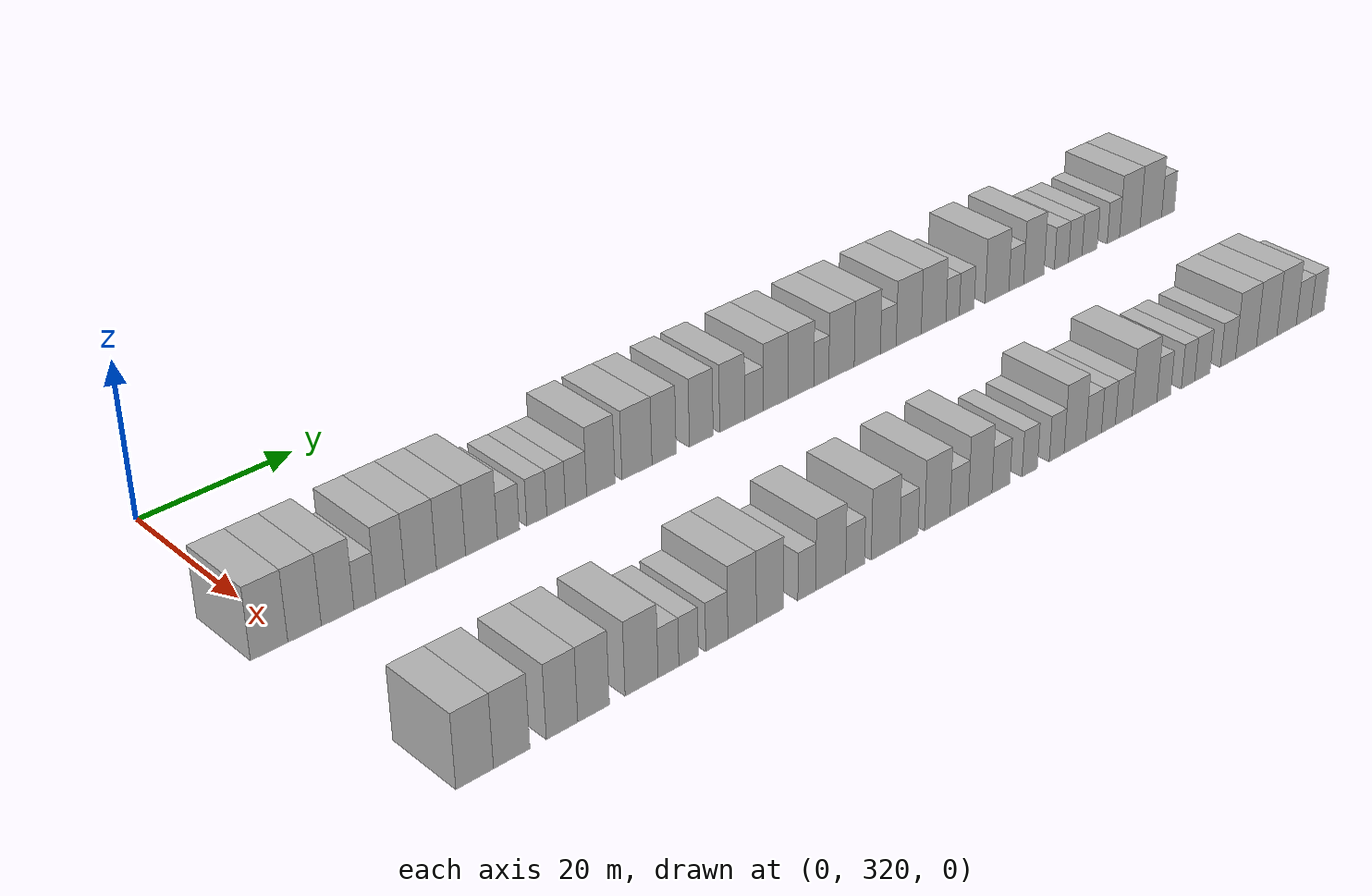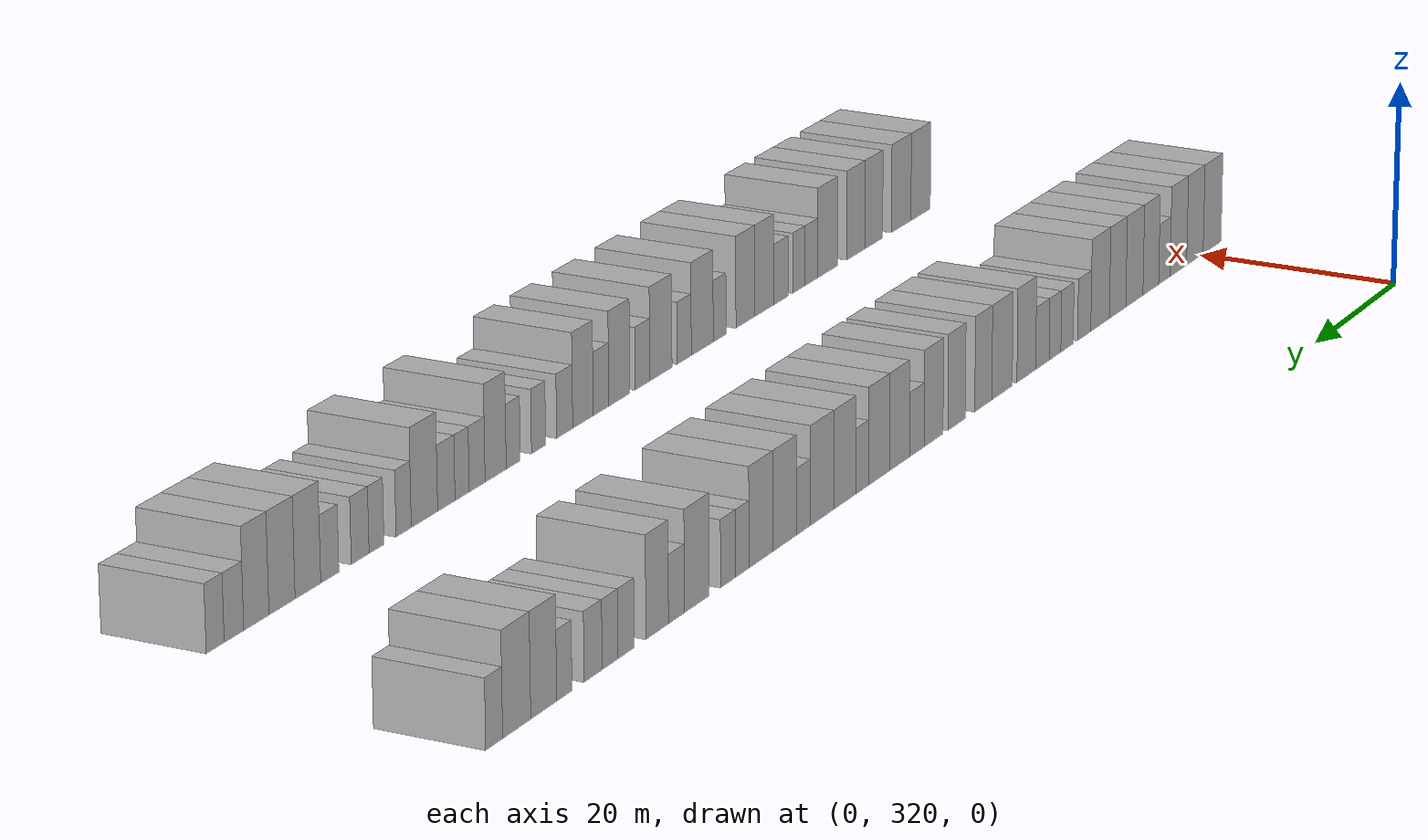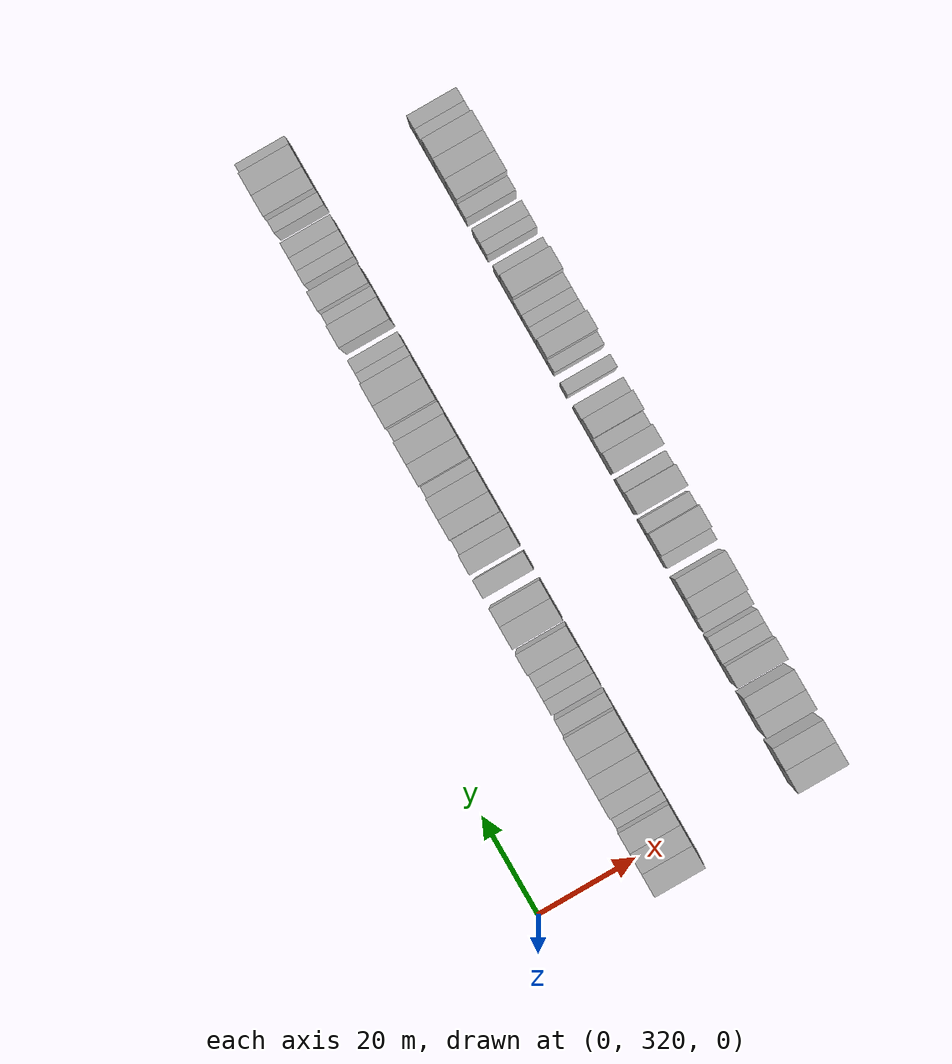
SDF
<sdf version="1.6">
 <world name="default">
  <model name="building_197">
   <static>1</static>
   <pose>25.0000 317.2518 0 0.000000 0.000000 0.000000</pose>
   <link name="link">
    <pose>0 0 4.50 0 0 0</pose>
    <collision name="collision"><geometry><box><size>10.0000 4.4565 9.0000</size></box></geometry></collision>
    <visual name="visual">
     <cast_shadows>0</cast_shadows>
     <geometry><box><size>10.0000 4.4565 9.0000</size></box></geometry>
     <material>
      <script>
       <uri>model://HANNAS_wall/materials/scripts</uri>
       <uri>model://HANNAS_wall/materials/textures</uri>
       <name>vrc/HANNAS_wall</name>
      </script>
     </material>
    </visual>
   </link>
  </model>
  <model name="building_198">
   <static>1</static>
   <pose>25.0000 321.5108 0 0.000000 0.000000 0.000000</pose>
   <link name="link">
    <pose>0 0 4.50 0 0 0</pose>
    <collision name="collision"><geometry><box><size>10.0000 4.0615 9.0000</size></box></geometry></collision>
    <visual name="visual">
     <cast_shadows>0</cast_shadows>
     <geometry><box><size>10.0000 4.0615 9.0000</size></box></geometry>
     <material>
      <script>
       <uri>model://HANNAS_wall/materials/scripts</uri>
       <uri>model://HANNAS_wall/materials/textures</uri>
       <name>vrc/HANNAS_wall</name>
      </script>
     </material>
    </visual>
   </link>
  </model>
  <model name="building_199">
   <static>1</static>
   <pose>25.0000 325.5617 0 0.000000 0.000000 0.000000</pose>
   <link name="link">
    <pose>0 0 4.50 0 0 0</pose>
    <collision name="collision"><geometry><box><size>10.0000 4.0402 9.0000</size></box></geometry></collision>
    <visual name="visual">
     <cast_shadows>0</cast_shadows>
     <geometry><box><size>10.0000 4.0402 9.0000</size></box></geometry>
     <material>
      <script>
       <uri>model://HANNAS_wall/materials/scripts</uri>
       <uri>model://HANNAS_wall/materials/textures</uri>
       <name>vrc/HANNAS_wall</name>
      </script>
     </material>
    </visual>
   </link>
  </model>
  <model name="building_200">
   <static>1</static>
   <pose>25.0000 328.9536 0 0.000000 0.000000 0.000000</pose>
   <link name="link">
    <pose>0 0 3.00 0 0 0</pose>
    <collision name="collision"><geometry><box><size>10.0000 2.7436 6.0000</size></box></geometry></collision>
    <visual name="visual">
     <cast_shadows>0</cast_shadows>
     <geometry><box><size>10.0000 2.7436 6.0000</size></box></geometry>
     <material>
      <script>
       <uri>model://HANNAS_wall/materials/scripts</uri>
       <uri>model://HANNAS_wall/materials/textures</uri>
       <name>vrc/HANNAS_wall</name>
      </script>
     </material>
    </visual>
   </link>
  </model>
  <model name="building_201">
   <static>1</static>
   <pose>25.0000 332.1944 0 0.000000 0.000000 0.000000</pose>
   <link name="link">
    <pose>0 0 4.50 0 0 0</pose>
    <collision name="collision"><geometry><box><size>10.0000 3.7379 9.0000</size></box></geometry></collision>
    <visual name="visual">
     <cast_shadows>0</cast_shadows>
     <geometry><box><size>10.0000 3.7379 9.0000</size></box></geometry>
     <material>
      <script>
       <uri>model://HANNAS_wall/materials/scripts</uri>
       <uri>model://HANNAS_wall/materials/textures</uri>
       <name>vrc/HANNAS_wall</name>
      </script>
     </material>
    </visual>
   </link>
  </model>
  <model name="building_202">
   <static>1</static>
   <pose>25.0000 336.0819 0 0.000000 0.000000 0.000000</pose>
   <link name="link">
    <pose>0 0 4.50 0 0 0</pose>
    <collision name="collision"><geometry><box><size>10.0000 4.0372 9.0000</size></box></geometry></collision>
    <visual name="visual">
     <cast_shadows>0</cast_shadows>
     <geometry><box><size>10.0000 4.0372 9.0000</size></box></geometry>
     <material>
      <script>
       <uri>model://HANNAS_wall/materials/scripts</uri>
       <uri>model://HANNAS_wall/materials/textures</uri>
       <name>vrc/HANNAS_wall</name>
      </script>
     </material>
    </visual>
   </link>
  </model>
  <model name="building_203">
   <static>1</static>
   <pose>25.0000 340.0182 0 0.000000 0.000000 0.000000</pose>
   <link name="link">
    <pose>0 0 4.50 0 0 0</pose>
    <collision name="collision"><geometry><box><size>10.0000 3.8353 9.0000</size></box></geometry></collision>
    <visual name="visual">
     <cast_shadows>0</cast_shadows>
     <geometry><box><size>10.0000 3.8353 9.0000</size></box></geometry>
     <material>
      <script>
       <uri>model://HANNAS_wall/materials/scripts</uri>
       <uri>model://HANNAS_wall/materials/textures</uri>
       <name>vrc/HANNAS_wall</name>
      </script>
     </material>
    </visual>
   </link>
  </model>
  <model name="building_204">
   <static>1</static>
   <pose>25.0000 344.0698 0 0.000000 0.000000 0.000000</pose>
   <link name="link">
    <pose>0 0 4.50 0 0 0</pose>
    <collision name="collision"><geometry><box><size>10.0000 4.2679 9.0000</size></box></geometry></collision>
    <visual name="visual">
     <cast_shadows>0</cast_shadows>
     <geometry><box><size>10.0000 4.2679 9.0000</size></box></geometry>
     <material>
      <script>
       <uri>model://HANNAS_wall/materials/scripts</uri>
       <uri>model://HANNAS_wall/materials/textures</uri>
       <name>vrc/HANNAS_wall</name>
      </script>
     </material>
    </visual>
   </link>
  </model>
  <model name="building_205">
   <static>1</static>
   <pose>25.0000 347.7019 0 0.000000 0.000000 0.000000</pose>
   <link name="link">
    <pose>0 0 3.00 0 0 0</pose>
    <collision name="collision"><geometry><box><size>10.0000 2.9964 6.0000</size></box></geometry></collision>
    <visual name="visual">
     <cast_shadows>0</cast_shadows>
     <geometry><box><size>10.0000 2.9964 6.0000</size></box></geometry>
     <material>
      <script>
       <uri>model://HANNAS_wall/materials/scripts</uri>
       <uri>model://HANNAS_wall/materials/textures</uri>
       <name>vrc/HANNAS_wall</name>
      </script>
     </material>
    </visual>
   </link>
  </model>
  <model name="building_206">
   <static>1</static>
   <pose>25.0000 351.5862 0 0.000000 0.000000 0.000000</pose>
   <link name="link">
    <pose>0 0 3.00 0 0 0</pose>
    <collision name="collision"><geometry><box><size>10.0000 2.7721 6.0000</size></box></geometry></collision>
    <visual name="visual">
     <cast_shadows>0</cast_shadows>
     <geometry><box><size>10.0000 2.7721 6.0000</size></box></geometry>
     <material>
      <script>
       <uri>model://HANNAS_wall/materials/scripts</uri>
       <uri>model://HANNAS_wall/materials/textures</uri>
       <name>vrc/HANNAS_wall</name>
      </script>
     </material>
    </visual>
   </link>
  </model>
  <model name="building_207">
   <static>1</static>
   <pose>25.0000 354.2764 0 0.000000 0.000000 0.000000</pose>
   <link name="link">
    <pose>0 0 3.00 0 0 0</pose>
    <collision name="collision"><geometry><box><size>10.0000 2.6082 6.0000</size></box></geometry></collision>
    <visual name="visual">
     <cast_shadows>0</cast_shadows>
     <geometry><box><size>10.0000 2.6082 6.0000</size></box></geometry>
     <material>
      <script>
       <uri>model://HANNAS_wall/materials/scripts</uri>
       <uri>model://HANNAS_wall/materials/textures</uri>
       <name>vrc/HANNAS_wall</name>
      </script>
     </material>
    </visual>
   </link>
  </model>
  <model name="building_208">
   <static>1</static>
   <pose>25.0000 357.0759 0 0.000000 0.000000 0.000000</pose>
   <link name="link">
    <pose>0 0 3.00 0 0 0</pose>
    <collision name="collision"><geometry><box><size>10.0000 2.9909 6.0000</size></box></geometry></collision>
    <visual name="visual">
     <cast_shadows>0</cast_shadows>
     <geometry><box><size>10.0000 2.9909 6.0000</size></box></geometry>
     <material>
      <script>
       <uri>model://HANNAS_wall/materials/scripts</uri>
       <uri>model://HANNAS_wall/materials/textures</uri>
       <name>vrc/HANNAS_wall</name>
      </script>
     </material>
    </visual>
   </link>
  </model>
  <model name="building_209">
   <static>1</static>
   <pose>25.0000 360.6147 0 0.000000 0.000000 0.000000</pose>
   <link name="link">
    <pose>0 0 4.50 0 0 0</pose>
    <collision name="collision"><geometry><box><size>10.0000 4.0865 9.0000</size></box></geometry></collision>
    <visual name="visual">
     <cast_shadows>0</cast_shadows>
     <geometry><box><size>10.0000 4.0865 9.0000</size></box></geometry>
     <material>
      <script>
       <uri>model://HANNAS_wall/materials/scripts</uri>
       <uri>model://HANNAS_wall/materials/textures</uri>
       <name>vrc/HANNAS_wall</name>
      </script>
     </material>
    </visual>
   </link>
  </model>
  <model name="building_210">
   <static>1</static>
   <pose>25.0000 365.8643 0 0.000000 0.000000 0.000000</pose>
   <link name="link">
    <pose>0 0 4.50 0 0 0</pose>
    <collision name="collision"><geometry><box><size>10.0000 4.4127 9.0000</size></box></geometry></collision>
    <visual name="visual">
     <cast_shadows>0</cast_shadows>
     <geometry><box><size>10.0000 4.4127 9.0000</size></box></geometry>
     <material>
      <script>
       <uri>model://HANNAS_wall/materials/scripts</uri>
       <uri>model://HANNAS_wall/materials/textures</uri>
       <name>vrc/HANNAS_wall</name>
      </script>
     </material>
    </visual>
   </link>
  </model>
  <model name="building_211">
   <static>1</static>
   <pose>25.0000 369.8745 0 0.000000 0.000000 0.000000</pose>
   <link name="link">
    <pose>0 0 4.50 0 0 0</pose>
    <collision name="collision"><geometry><box><size>10.0000 3.6077 9.0000</size></box></geometry></collision>
    <visual name="visual">
     <cast_shadows>0</cast_shadows>
     <geometry><box><size>10.0000 3.6077 9.0000</size></box></geometry>
     <material>
      <script>
       <uri>model://HANNAS_wall/materials/scripts</uri>
       <uri>model://HANNAS_wall/materials/textures</uri>
       <name>vrc/HANNAS_wall</name>
      </script>
     </material>
    </visual>
   </link>
  </model>
  <model name="building_212">
   <static>1</static>
   <pose>25.0000 375.4899 0 0.000000 0.000000 0.000000</pose>
   <link name="link">
    <pose>0 0 4.50 0 0 0</pose>
    <collision name="collision"><geometry><box><size>10.0000 3.6230 9.0000</size></box></geometry></collision>
    <visual name="visual">
     <cast_shadows>0</cast_shadows>
     <geometry><box><size>10.0000 3.6230 9.0000</size></box></geometry>
     <material>
      <script>
       <uri>model://HANNAS_wall/materials/scripts</uri>
       <uri>model://HANNAS_wall/materials/textures</uri>
       <name>vrc/HANNAS_wall</name>
      </script>
     </material>
    </visual>
   </link>
  </model>
  <model name="building_213">
   <static>1</static>
   <pose>25.0000 380.2463 0 0.000000 0.000000 0.000000</pose>
   <link name="link">
    <pose>0 0 4.50 0 0 0</pose>
    <collision name="collision"><geometry><box><size>10.0000 3.8899 9.0000</size></box></geometry></collision>
    <visual name="visual">
     <cast_shadows>0</cast_shadows>
     <geometry><box><size>10.0000 3.8899 9.0000</size></box></geometry>
     <material>
      <script>
       <uri>model://HANNAS_wall/materials/scripts</uri>
       <uri>model://HANNAS_wall/materials/textures</uri>
       <name>vrc/HANNAS_wall</name>
      </script>
     </material>
    </visual>
   </link>
  </model>
  <model name="building_214">
   <static>1</static>
   <pose>25.0000 383.6715 0 0.000000 0.000000 0.000000</pose>
   <link name="link">
    <pose>0 0 3.00 0 0 0</pose>
    <collision name="collision"><geometry><box><size>10.0000 2.9606 6.0000</size></box></geometry></collision>
    <visual name="visual">
     <cast_shadows>0</cast_shadows>
     <geometry><box><size>10.0000 2.9606 6.0000</size></box></geometry>
     <material>
      <script>
       <uri>model://HANNAS_wall/materials/scripts</uri>
       <uri>model://HANNAS_wall/materials/textures</uri>
       <name>vrc/HANNAS_wall</name>
      </script>
     </material>
    </visual>
   </link>
  </model>
  <model name="building_215">
   <static>1</static>
   <pose>25.0000 387.1314 0 0.000000 0.000000 0.000000</pose>
   <link name="link">
    <pose>0 0 4.50 0 0 0</pose>
    <collision name="collision"><geometry><box><size>10.0000 3.9591 9.0000</size></box></geometry></collision>
    <visual name="visual">
     <cast_shadows>0</cast_shadows>
     <geometry><box><size>10.0000 3.9591 9.0000</size></box></geometry>
     <material>
      <script>
       <uri>model://HANNAS_wall/materials/scripts</uri>
       <uri>model://HANNAS_wall/materials/textures</uri>
       <name>vrc/HANNAS_wall</name>
      </script>
     </material>
    </visual>
   </link>
  </model>
  <model name="building_216">
   <static>1</static>
   <pose>25.0000 391.2156 0 0.000000 0.000000 0.000000</pose>
   <link name="link">
    <pose>0 0 4.50 0 0 0</pose>
    <collision name="collision"><geometry><box><size>10.0000 4.2094 9.0000</size></box></geometry></collision>
    <visual name="visual">
     <cast_shadows>0</cast_shadows>
     <geometry><box><size>10.0000 4.2094 9.0000</size></box></geometry>
     <material>
      <script>
       <uri>model://HANNAS_wall/materials/scripts</uri>
       <uri>model://HANNAS_wall/materials/textures</uri>
       <name>vrc/HANNAS_wall</name>
      </script>
     </material>
    </visual>
   </link>
  </model>
  <model name="building_217">
   <static>1</static>
   <pose>25.0000 394.5482 0 0.000000 0.000000 0.000000</pose>
   <link name="link">
    <pose>0 0 3.00 0 0 0</pose>
    <collision name="collision"><geometry><box><size>10.0000 2.4557 6.0000</size></box></geometry></collision>
    <visual name="visual">
     <cast_shadows>0</cast_shadows>
     <geometry><box><size>10.0000 2.4557 6.0000</size></box></geometry>
     <material>
      <script>
       <uri>model://HANNAS_wall/materials/scripts</uri>
       <uri>model://HANNAS_wall/materials/textures</uri>
       <name>vrc/HANNAS_wall</name>
      </script>
     </material>
    </visual>
   </link>
  </model>
  <model name="building_218">
   <static>1</static>
   <pose>25.0000 397.8906 0 0.000000 0.000000 0.000000</pose>
   <link name="link">
    <pose>0 0 4.50 0 0 0</pose>
    <collision name="collision"><geometry><box><size>10.0000 4.2292 9.0000</size></box></geometry></collision>
    <visual name="visual">
     <cast_shadows>0</cast_shadows>
     <geometry><box><size>10.0000 4.2292 9.0000</size></box></geometry>
     <material>
      <script>
       <uri>model://HANNAS_wall/materials/scripts</uri>
       <uri>model://HANNAS_wall/materials/textures</uri>
       <name>vrc/HANNAS_wall</name>
      </script>
     </material>
    </visual>
   </link>
  </model>
  <model name="building_219">
   <static>1</static>
   <pose>25.0000 402.2283 0 0.000000 0.000000 0.000000</pose>
   <link name="link">
    <pose>0 0 4.50 0 0 0</pose>
    <collision name="collision"><geometry><box><size>10.0000 4.4461 9.0000</size></box></geometry></collision>
    <visual name="visual">
     <cast_shadows>0</cast_shadows>
     <geometry><box><size>10.0000 4.4461 9.0000</size></box></geometry>
     <material>
      <script>
       <uri>model://HANNAS_wall/materials/scripts</uri>
       <uri>model://HANNAS_wall/materials/textures</uri>
       <name>vrc/HANNAS_wall</name>
      </script>
     </material>
    </visual>
   </link>
  </model>
  <model name="building_220">
   <static>1</static>
   <pose>25.0000 405.8109 0 0.000000 0.000000 0.000000</pose>
   <link name="link">
    <pose>0 0 3.00 0 0 0</pose>
    <collision name="collision"><geometry><box><size>10.0000 2.7191 6.0000</size></box></geometry></collision>
    <visual name="visual">
     <cast_shadows>0</cast_shadows>
     <geometry><box><size>10.0000 2.7191 6.0000</size></box></geometry>
     <material>
      <script>
       <uri>model://HANNAS_wall/materials/scripts</uri>
       <uri>model://HANNAS_wall/materials/textures</uri>
       <name>vrc/HANNAS_wall</name>
      </script>
     </material>
    </visual>
   </link>
  </model>
  <model name="building_221">
   <static>1</static>
   <pose>25.0000 409.3556 0 0.000000 0.000000 0.000000</pose>
   <link name="link">
    <pose>0 0 4.50 0 0 0</pose>
    <collision name="collision"><geometry><box><size>10.0000 4.3703 9.0000</size></box></geometry></collision>
    <visual name="visual">
     <cast_shadows>0</cast_shadows>
     <geometry><box><size>10.0000 4.3703 9.0000</size></box></geometry>
     <material>
      <script>
       <uri>model://HANNAS_wall/materials/scripts</uri>
       <uri>model://HANNAS_wall/materials/textures</uri>
       <name>vrc/HANNAS_wall</name>
      </script>
     </material>
    </visual>
   </link>
  </model>
  <model name="building_222">
   <static>1</static>
   <pose>25.0000 413.7245 0 0.000000 0.000000 0.000000</pose>
   <link name="link">
    <pose>0 0 4.50 0 0 0</pose>
    <collision name="collision"><geometry><box><size>10.0000 4.3675 9.0000</size></box></geometry></collision>
    <visual name="visual">
     <cast_shadows>0</cast_shadows>
     <geometry><box><size>10.0000 4.3675 9.0000</size></box></geometry>
     <material>
      <script>
       <uri>model://HANNAS_wall/materials/scripts</uri>
       <uri>model://HANNAS_wall/materials/textures</uri>
       <name>vrc/HANNAS_wall</name>
      </script>
     </material>
    </visual>
   </link>
  </model>
  <model name="building_223">
   <static>1</static>
   <pose>25.0000 417.1177 0 0.000000 0.000000 0.000000</pose>
   <link name="link">
    <pose>0 0 3.00 0 0 0</pose>
    <collision name="collision"><geometry><box><size>10.0000 2.4190 6.0000</size></box></geometry></collision>
    <visual name="visual">
     <cast_shadows>0</cast_shadows>
     <geometry><box><size>10.0000 2.4190 6.0000</size></box></geometry>
     <material>
      <script>
       <uri>model://HANNAS_wall/materials/scripts</uri>
       <uri>model://HANNAS_wall/materials/textures</uri>
       <name>vrc/HANNAS_wall</name>
      </script>
     </material>
    </visual>
   </link>
  </model>
  <model name="building_224">
   <static>1</static>
   <pose>25.0000 419.6715 0 0.000000 0.000000 0.000000</pose>
   <link name="link">
    <pose>0 0 3.00 0 0 0</pose>
    <collision name="collision"><geometry><box><size>10.0000 2.6886 6.0000</size></box></geometry></collision>
    <visual name="visual">
     <cast_shadows>0</cast_shadows>
     <geometry><box><size>10.0000 2.6886 6.0000</size></box></geometry>
     <material>
      <script>
       <uri>model://HANNAS_wall/materials/scripts</uri>
       <uri>model://HANNAS_wall/materials/textures</uri>
       <name>vrc/HANNAS_wall</name>
      </script>
     </material>
    </visual>
   </link>
  </model>
  <model name="building_225">
   <static>1</static>
   <pose>25.0000 425.2130 0 0.000000 0.000000 0.000000</pose>
   <link name="link">
    <pose>0 0 4.50 0 0 0</pose>
    <collision name="collision"><geometry><box><size>10.0000 4.3943 9.0000</size></box></geometry></collision>
    <visual name="visual">
     <cast_shadows>0</cast_shadows>
     <geometry><box><size>10.0000 4.3943 9.0000</size></box></geometry>
     <material>
      <script>
       <uri>model://HANNAS_wall/materials/scripts</uri>
       <uri>model://HANNAS_wall/materials/textures</uri>
       <name>vrc/HANNAS_wall</name>
      </script>
     </material>
    </visual>
   </link>
  </model>
  <model name="building_226">
   <static>1</static>
   <pose>25.0000 428.7999 0 0.000000 0.000000 0.000000</pose>
   <link name="link">
    <pose>0 0 3.00 0 0 0</pose>
    <collision name="collision"><geometry><box><size>10.0000 2.7796 6.0000</size></box></geometry></collision>
    <visual name="visual">
     <cast_shadows>0</cast_shadows>
     <geometry><box><size>10.0000 2.7796 6.0000</size></box></geometry>
     <material>
      <script>
       <uri>model://HANNAS_wall/materials/scripts</uri>
       <uri>model://HANNAS_wall/materials/textures</uri>
       <name>vrc/HANNAS_wall</name>
      </script>
     </material>
    </visual>
   </link>
  </model>
  <model name="building_227">
   <static>1</static>
   <pose>25.0000 432.1204 0 0.000000 0.000000 0.000000</pose>
   <link name="link">
    <pose>0 0 4.50 0 0 0</pose>
    <collision name="collision"><geometry><box><size>10.0000 3.8614 9.0000</size></box></geometry></collision>
    <visual name="visual">
     <cast_shadows>0</cast_shadows>
     <geometry><box><size>10.0000 3.8614 9.0000</size></box></geometry>
     <material>
      <script>
       <uri>model://HANNAS_wall/materials/scripts</uri>
       <uri>model://HANNAS_wall/materials/textures</uri>
       <name>vrc/HANNAS_wall</name>
      </script>
     </material>
    </visual>
   </link>
  </model>
  <model name="building_228">
   <static>1</static>
   <pose>25.0000 437.4178 0 0.000000 0.000000 0.000000</pose>
   <link name="link">
    <pose>0 0 3.00 0 0 0</pose>
    <collision name="collision"><geometry><box><size>10.0000 2.7332 6.0000</size></box></geometry></collision>
    <visual name="visual">
     <cast_shadows>0</cast_shadows>
     <geometry><box><size>10.0000 2.7332 6.0000</size></box></geometry>
     <material>
      <script>
       <uri>model://HANNAS_wall/materials/scripts</uri>
       <uri>model://HANNAS_wall/materials/textures</uri>
       <name>vrc/HANNAS_wall</name>
      </script>
     </material>
    </visual>
   </link>
  </model>
  <model name="building_229">
   <static>1</static>
   <pose>25.0000 440.1076 0 0.000000 0.000000 0.000000</pose>
   <link name="link">
    <pose>0 0 3.00 0 0 0</pose>
    <collision name="collision"><geometry><box><size>10.0000 2.6464 6.0000</size></box></geometry></collision>
    <visual name="visual">
     <cast_shadows>0</cast_shadows>
     <geometry><box><size>10.0000 2.6464 6.0000</size></box></geometry>
     <material>
      <script>
       <uri>model://HANNAS_wall/materials/scripts</uri>
       <uri>model://HANNAS_wall/materials/textures</uri>
       <name>vrc/HANNAS_wall</name>
      </script>
     </material>
    </visual>
   </link>
  </model>
  <model name="building_230">
   <static>1</static>
   <pose>25.0000 442.9278 0 0.000000 0.000000 0.000000</pose>
   <link name="link">
    <pose>0 0 3.00 0 0 0</pose>
    <collision name="collision"><geometry><box><size>10.0000 2.9940 6.0000</size></box></geometry></collision>
    <visual name="visual">
     <cast_shadows>0</cast_shadows>
     <geometry><box><size>10.0000 2.9940 6.0000</size></box></geometry>
     <material>
      <script>
       <uri>model://HANNAS_wall/materials/scripts</uri>
       <uri>model://HANNAS_wall/materials/textures</uri>
       <name>vrc/HANNAS_wall</name>
      </script>
     </material>
    </visual>
   </link>
  </model>
  <model name="building_231">
   <static>1</static>
   <pose>25.0000 447.6587 0 0.000000 0.000000 0.000000</pose>
   <link name="link">
    <pose>0 0 3.00 0 0 0</pose>
    <collision name="collision"><geometry><box><size>10.0000 2.4679 6.0000</size></box></geometry></collision>
    <visual name="visual">
     <cast_shadows>0</cast_shadows>
     <geometry><box><size>10.0000 2.4679 6.0000</size></box></geometry>
     <material>
      <script>
       <uri>model://HANNAS_wall/materials/scripts</uri>
       <uri>model://HANNAS_wall/materials/textures</uri>
       <name>vrc/HANNAS_wall</name>
      </script>
     </material>
    </visual>
   </link>
  </model>
  <model name="building_232">
   <static>1</static>
   <pose>25.0000 450.9825 0 0.000000 0.000000 0.000000</pose>
   <link name="link">
    <pose>0 0 4.50 0 0 0</pose>
    <collision name="collision"><geometry><box><size>10.0000 4.1797 9.0000</size></box></geometry></collision>
    <visual name="visual">
     <cast_shadows>0</cast_shadows>
     <geometry><box><size>10.0000 4.1797 9.0000</size></box></geometry>
     <material>
      <script>
       <uri>model://HANNAS_wall/materials/scripts</uri>
       <uri>model://HANNAS_wall/materials/textures</uri>
       <name>vrc/HANNAS_wall</name>
      </script>
     </material>
    </visual>
   </link>
  </model>
  <model name="building_233">
   <static>1</static>
   <pose>25.0000 455.2937 0 0.000000 0.000000 0.000000</pose>
   <link name="link">
    <pose>0 0 4.50 0 0 0</pose>
    <collision name="collision"><geometry><box><size>10.0000 4.4428 9.0000</size></box></geometry></collision>
    <visual name="visual">
     <cast_shadows>0</cast_shadows>
     <geometry><box><size>10.0000 4.4428 9.0000</size></box></geometry>
     <material>
      <script>
       <uri>model://HANNAS_wall/materials/scripts</uri>
       <uri>model://HANNAS_wall/materials/textures</uri>
       <name>vrc/HANNAS_wall</name>
      </script>
     </material>
    </visual>
   </link>
  </model>
  <model name="building_234">
   <static>1</static>
   <pose>25.0000 458.8387 0 0.000000 0.000000 0.000000</pose>
   <link name="link">
    <pose>0 0 3.00 0 0 0</pose>
    <collision name="collision"><geometry><box><size>10.0000 2.6471 6.0000</size></box></geometry></collision>
    <visual name="visual">
     <cast_shadows>0</cast_shadows>
     <geometry><box><size>10.0000 2.6471 6.0000</size></box></geometry>
     <material>
      <script>
       <uri>model://HANNAS_wall/materials/scripts</uri>
       <uri>model://HANNAS_wall/materials/textures</uri>
       <name>vrc/HANNAS_wall</name>
      </script>
     </material>
    </visual>
   </link>
  </model>
  <model name="building_430">
   <static>1</static>
   <pose>55.0000 320.3013 0 0.000000 0.000000 0.000000</pose>
   <link name="link">
    <pose>0 0 4.50 0 0 0</pose>
    <collision name="collision"><geometry><box><size>10.0000 4.4368 9.0000</size></box></geometry></collision>
    <visual name="visual">
     <cast_shadows>0</cast_shadows>
     <geometry><box><size>10.0000 4.4368 9.0000</size></box></geometry>
     <material>
      <script>
       <uri>model://HANNAS_wall/materials/scripts</uri>
       <uri>model://HANNAS_wall/materials/textures</uri>
       <name>vrc/HANNAS_wall</name>
      </script>
     </material>
    </visual>
   </link>
  </model>
  <model name="building_431">
   <static>1</static>
   <pose>55.0000 324.7061 0 0.000000 0.000000 0.000000</pose>
   <link name="link">
    <pose>0 0 4.50 0 0 0</pose>
    <collision name="collision"><geometry><box><size>10.0000 4.3727 9.0000</size></box></geometry></collision>
    <visual name="visual">
     <cast_shadows>0</cast_shadows>
     <geometry><box><size>10.0000 4.3727 9.0000</size></box></geometry>
     <material>
      <script>
       <uri>model://HANNAS_wall/materials/scripts</uri>
       <uri>model://HANNAS_wall/materials/textures</uri>
       <name>vrc/HANNAS_wall</name>
      </script>
     </material>
    </visual>
   </link>
  </model>
  <model name="building_432">
   <static>1</static>
   <pose>55.0000 330.8379 0 0.000000 0.000000 0.000000</pose>
   <link name="link">
    <pose>0 0 4.50 0 0 0</pose>
    <collision name="collision"><geometry><box><size>10.0000 3.8909 9.0000</size></box></geometry></collision>
    <visual name="visual">
     <cast_shadows>0</cast_shadows>
     <geometry><box><size>10.0000 3.8909 9.0000</size></box></geometry>
     <material>
      <script>
       <uri>model://HANNAS_wall/materials/scripts</uri>
       <uri>model://HANNAS_wall/materials/textures</uri>
       <name>vrc/HANNAS_wall</name>
      </script>
     </material>
    </visual>
   </link>
  </model>
  <model name="building_433">
   <static>1</static>
   <pose>55.0000 334.7774 0 0.000000 0.000000 0.000000</pose>
   <link name="link">
    <pose>0 0 4.50 0 0 0</pose>
    <collision name="collision"><geometry><box><size>10.0000 3.9883 9.0000</size></box></geometry></collision>
    <visual name="visual">
     <cast_shadows>0</cast_shadows>
     <geometry><box><size>10.0000 3.9883 9.0000</size></box></geometry>
     <material>
      <script>
       <uri>model://HANNAS_wall/materials/scripts</uri>
       <uri>model://HANNAS_wall/materials/textures</uri>
       <name>vrc/HANNAS_wall</name>
      </script>
     </material>
    </visual>
   </link>
  </model>
  <model name="building_434">
   <static>1</static>
   <pose>55.0000 340.9197 0 0.000000 0.000000 0.000000</pose>
   <link name="link">
    <pose>0 0 4.50 0 0 0</pose>
    <collision name="collision"><geometry><box><size>10.0000 4.2963 9.0000</size></box></geometry></collision>
    <visual name="visual">
     <cast_shadows>0</cast_shadows>
     <geometry><box><size>10.0000 4.2963 9.0000</size></box></geometry>
     <material>
      <script>
       <uri>model://HANNAS_wall/materials/scripts</uri>
       <uri>model://HANNAS_wall/materials/textures</uri>
       <name>vrc/HANNAS_wall</name>
      </script>
     </material>
    </visual>
   </link>
  </model>
  <model name="building_435">
   <static>1</static>
   <pose>55.0000 344.4297 0 0.000000 0.000000 0.000000</pose>
   <link name="link">
    <pose>0 0 3.00 0 0 0</pose>
    <collision name="collision"><geometry><box><size>10.0000 2.7237 6.0000</size></box></geometry></collision>
    <visual name="visual">
     <cast_shadows>0</cast_shadows>
     <geometry><box><size>10.0000 2.7237 6.0000</size></box></geometry>
     <material>
      <script>
       <uri>model://HANNAS_wall/materials/scripts</uri>
       <uri>model://HANNAS_wall/materials/textures</uri>
       <name>vrc/HANNAS_wall</name>
      </script>
     </material>
    </visual>
   </link>
  </model>
  <model name="building_436">
   <static>1</static>
   <pose>55.0000 347.0900 0 0.000000 0.000000 0.000000</pose>
   <link name="link">
    <pose>0 0 3.00 0 0 0</pose>
    <collision name="collision"><geometry><box><size>10.0000 2.5969 6.0000</size></box></geometry></collision>
    <visual name="visual">
     <cast_shadows>0</cast_shadows>
     <geometry><box><size>10.0000 2.5969 6.0000</size></box></geometry>
     <material>
      <script>
       <uri>model://HANNAS_wall/materials/scripts</uri>
       <uri>model://HANNAS_wall/materials/textures</uri>
       <name>vrc/HANNAS_wall</name>
      </script>
     </material>
    </visual>
   </link>
  </model>
  <model name="building_437">
   <static>1</static>
   <pose>55.0000 350.8883 0 0.000000 0.000000 0.000000</pose>
   <link name="link">
    <pose>0 0 3.00 0 0 0</pose>
    <collision name="collision"><geometry><box><size>10.0000 2.9997 6.0000</size></box></geometry></collision>
    <visual name="visual">
     <cast_shadows>0</cast_shadows>
     <geometry><box><size>10.0000 2.9997 6.0000</size></box></geometry>
     <material>
      <script>
       <uri>model://HANNAS_wall/materials/scripts</uri>
       <uri>model://HANNAS_wall/materials/textures</uri>
       <name>vrc/HANNAS_wall</name>
      </script>
     </material>
    </visual>
   </link>
  </model>
  <model name="building_438">
   <static>1</static>
   <pose>55.0000 354.3564 0 0.000000 0.000000 0.000000</pose>
   <link name="link">
    <pose>0 0 4.50 0 0 0</pose>
    <collision name="collision"><geometry><box><size>10.0000 3.9365 9.0000</size></box></geometry></collision>
    <visual name="visual">
     <cast_shadows>0</cast_shadows>
     <geometry><box><size>10.0000 3.9365 9.0000</size></box></geometry>
     <material>
      <script>
       <uri>model://HANNAS_wall/materials/scripts</uri>
       <uri>model://HANNAS_wall/materials/textures</uri>
       <name>vrc/HANNAS_wall</name>
      </script>
     </material>
    </visual>
   </link>
  </model>
  <model name="building_439">
   <static>1</static>
   <pose>55.0000 358.2499 0 0.000000 0.000000 0.000000</pose>
   <link name="link">
    <pose>0 0 4.50 0 0 0</pose>
    <collision name="collision"><geometry><box><size>10.0000 3.8505 9.0000</size></box></geometry></collision>
    <visual name="visual">
     <cast_shadows>0</cast_shadows>
     <geometry><box><size>10.0000 3.8505 9.0000</size></box></geometry>
     <material>
      <script>
       <uri>model://HANNAS_wall/materials/scripts</uri>
       <uri>model://HANNAS_wall/materials/textures</uri>
       <name>vrc/HANNAS_wall</name>
      </script>
     </material>
    </visual>
   </link>
  </model>
  <model name="building_440">
   <static>1</static>
   <pose>55.0000 363.4677 0 0.000000 0.000000 0.000000</pose>
   <link name="link">
    <pose>0 0 3.00 0 0 0</pose>
    <collision name="collision"><geometry><box><size>10.0000 2.5850 6.0000</size></box></geometry></collision>
    <visual name="visual">
     <cast_shadows>0</cast_shadows>
     <geometry><box><size>10.0000 2.5850 6.0000</size></box></geometry>
     <material>
      <script>
       <uri>model://HANNAS_wall/materials/scripts</uri>
       <uri>model://HANNAS_wall/materials/textures</uri>
       <name>vrc/HANNAS_wall</name>
      </script>
     </material>
    </visual>
   </link>
  </model>
  <model name="building_441">
   <static>1</static>
   <pose>55.0000 366.9449 0 0.000000 0.000000 0.000000</pose>
   <link name="link">
    <pose>0 0 4.50 0 0 0</pose>
    <collision name="collision"><geometry><box><size>10.0000 4.3695 9.0000</size></box></geometry></collision>
    <visual name="visual">
     <cast_shadows>0</cast_shadows>
     <geometry><box><size>10.0000 4.3695 9.0000</size></box></geometry>
     <material>
      <script>
       <uri>model://HANNAS_wall/materials/scripts</uri>
       <uri>model://HANNAS_wall/materials/textures</uri>
       <name>vrc/HANNAS_wall</name>
      </script>
     </material>
    </visual>
   </link>
  </model>
  <model name="building_442">
   <static>1</static>
   <pose>55.0000 370.5277 0 0.000000 0.000000 0.000000</pose>
   <link name="link">
    <pose>0 0 3.00 0 0 0</pose>
    <collision name="collision"><geometry><box><size>10.0000 2.7959 6.0000</size></box></geometry></collision>
    <visual name="visual">
     <cast_shadows>0</cast_shadows>
     <geometry><box><size>10.0000 2.7959 6.0000</size></box></geometry>
     <material>
      <script>
       <uri>model://HANNAS_wall/materials/scripts</uri>
       <uri>model://HANNAS_wall/materials/textures</uri>
       <name>vrc/HANNAS_wall</name>
      </script>
     </material>
    </visual>
   </link>
  </model>
  <model name="building_443">
   <static>1</static>
   <pose>55.0000 375.0748 0 0.000000 0.000000 0.000000</pose>
   <link name="link">
    <pose>0 0 4.50 0 0 0</pose>
    <collision name="collision"><geometry><box><size>10.0000 4.2984 9.0000</size></box></geometry></collision>
    <visual name="visual">
     <cast_shadows>0</cast_shadows>
     <geometry><box><size>10.0000 4.2984 9.0000</size></box></geometry>
     <material>
      <script>
       <uri>model://HANNAS_wall/materials/scripts</uri>
       <uri>model://HANNAS_wall/materials/textures</uri>
       <name>vrc/HANNAS_wall</name>
      </script>
     </material>
    </visual>
   </link>
  </model>
  <model name="building_444">
   <static>1</static>
   <pose>55.0000 378.6366 0 0.000000 0.000000 0.000000</pose>
   <link name="link">
    <pose>0 0 3.00 0 0 0</pose>
    <collision name="collision"><geometry><box><size>10.0000 2.8251 6.0000</size></box></geometry></collision>
    <visual name="visual">
     <cast_shadows>0</cast_shadows>
     <geometry><box><size>10.0000 2.8251 6.0000</size></box></geometry>
     <material>
      <script>
       <uri>model://HANNAS_wall/materials/scripts</uri>
       <uri>model://HANNAS_wall/materials/textures</uri>
       <name>vrc/HANNAS_wall</name>
      </script>
     </material>
    </visual>
   </link>
  </model>
  <model name="building_445">
   <static>1</static>
   <pose>55.0000 383.0403 0 0.000000 0.000000 0.000000</pose>
   <link name="link">
    <pose>0 0 4.50 0 0 0</pose>
    <collision name="collision"><geometry><box><size>10.0000 3.9824 9.0000</size></box></geometry></collision>
    <visual name="visual">
     <cast_shadows>0</cast_shadows>
     <geometry><box><size>10.0000 3.9824 9.0000</size></box></geometry>
     <material>
      <script>
       <uri>model://HANNAS_wall/materials/scripts</uri>
       <uri>model://HANNAS_wall/materials/textures</uri>
       <name>vrc/HANNAS_wall</name>
      </script>
     </material>
    </visual>
   </link>
  </model>
  <model name="building_446">
   <static>1</static>
   <pose>55.0000 386.4910 0 0.000000 0.000000 0.000000</pose>
   <link name="link">
    <pose>0 0 3.00 0 0 0</pose>
    <collision name="collision"><geometry><box><size>10.0000 2.9189 6.0000</size></box></geometry></collision>
    <visual name="visual">
     <cast_shadows>0</cast_shadows>
     <geometry><box><size>10.0000 2.9189 6.0000</size></box></geometry>
     <material>
      <script>
       <uri>model://HANNAS_wall/materials/scripts</uri>
       <uri>model://HANNAS_wall/materials/textures</uri>
       <name>vrc/HANNAS_wall</name>
      </script>
     </material>
    </visual>
   </link>
  </model>
  <model name="building_447">
   <static>1</static>
   <pose>55.0000 389.8582 0 0.000000 0.000000 0.000000</pose>
   <link name="link">
    <pose>0 0 4.50 0 0 0</pose>
    <collision name="collision"><geometry><box><size>10.0000 3.8155 9.0000</size></box></geometry></collision>
    <visual name="visual">
     <cast_shadows>0</cast_shadows>
     <geometry><box><size>10.0000 3.8155 9.0000</size></box></geometry>
     <material>
      <script>
       <uri>model://HANNAS_wall/materials/scripts</uri>
       <uri>model://HANNAS_wall/materials/textures</uri>
       <name>vrc/HANNAS_wall</name>
      </script>
     </material>
    </visual>
   </link>
  </model>
  <model name="building_448">
   <static>1</static>
   <pose>55.0000 393.2362 0 0.000000 0.000000 0.000000</pose>
   <link name="link">
    <pose>0 0 3.00 0 0 0</pose>
    <collision name="collision"><geometry><box><size>10.0000 2.9405 6.0000</size></box></geometry></collision>
    <visual name="visual">
     <cast_shadows>0</cast_shadows>
     <geometry><box><size>10.0000 2.9405 6.0000</size></box></geometry>
     <material>
      <script>
       <uri>model://HANNAS_wall/materials/scripts</uri>
       <uri>model://HANNAS_wall/materials/textures</uri>
       <name>vrc/HANNAS_wall</name>
      </script>
     </material>
    </visual>
   </link>
  </model>
  <model name="building_449">
   <static>1</static>
   <pose>55.0000 397.9846 0 0.000000 0.000000 0.000000</pose>
   <link name="link">
    <pose>0 0 3.00 0 0 0</pose>
    <collision name="collision"><geometry><box><size>10.0000 2.5563 6.0000</size></box></geometry></collision>
    <visual name="visual">
     <cast_shadows>0</cast_shadows>
     <geometry><box><size>10.0000 2.5563 6.0000</size></box></geometry>
     <material>
      <script>
       <uri>model://HANNAS_wall/materials/scripts</uri>
       <uri>model://HANNAS_wall/materials/textures</uri>
       <name>vrc/HANNAS_wall</name>
      </script>
     </material>
    </visual>
   </link>
  </model>
  <model name="building_450">
   <static>1</static>
   <pose>55.0000 402.5203 0 0.000000 0.000000 0.000000</pose>
   <link name="link">
    <pose>0 0 3.00 0 0 0</pose>
    <collision name="collision"><geometry><box><size>10.0000 2.5151 6.0000</size></box></geometry></collision>
    <visual name="visual">
     <cast_shadows>0</cast_shadows>
     <geometry><box><size>10.0000 2.5151 6.0000</size></box></geometry>
     <material>
      <script>
       <uri>model://HANNAS_wall/materials/scripts</uri>
       <uri>model://HANNAS_wall/materials/textures</uri>
       <name>vrc/HANNAS_wall</name>
      </script>
     </material>
    </visual>
   </link>
  </model>
  <model name="building_451">
   <static>1</static>
   <pose>55.0000 405.6358 0 0.000000 0.000000 0.000000</pose>
   <link name="link">
    <pose>0 0 4.50 0 0 0</pose>
    <collision name="collision"><geometry><box><size>10.0000 3.7159 9.0000</size></box></geometry></collision>
    <visual name="visual">
     <cast_shadows>0</cast_shadows>
     <geometry><box><size>10.0000 3.7159 9.0000</size></box></geometry>
     <material>
      <script>
       <uri>model://HANNAS_wall/materials/scripts</uri>
       <uri>model://HANNAS_wall/materials/textures</uri>
       <name>vrc/HANNAS_wall</name>
      </script>
     </material>
    </visual>
   </link>
  </model>
  <model name="building_452">
   <static>1</static>
   <pose>55.0000 408.8739 0 0.000000 0.000000 0.000000</pose>
   <link name="link">
    <pose>0 0 3.00 0 0 0</pose>
    <collision name="collision"><geometry><box><size>10.0000 2.7604 6.0000</size></box></geometry></collision>
    <visual name="visual">
     <cast_shadows>0</cast_shadows>
     <geometry><box><size>10.0000 2.7604 6.0000</size></box></geometry>
     <material>
      <script>
       <uri>model://HANNAS_wall/materials/scripts</uri>
       <uri>model://HANNAS_wall/materials/textures</uri>
       <name>vrc/HANNAS_wall</name>
      </script>
     </material>
    </visual>
   </link>
  </model>
  <model name="building_453">
   <static>1</static>
   <pose>55.0000 411.4797 0 0.000000 0.000000 0.000000</pose>
   <link name="link">
    <pose>0 0 3.00 0 0 0</pose>
    <collision name="collision"><geometry><box><size>10.0000 2.4512 6.0000</size></box></geometry></collision>
    <visual name="visual">
     <cast_shadows>0</cast_shadows>
     <geometry><box><size>10.0000 2.4512 6.0000</size></box></geometry>
     <material>
      <script>
       <uri>model://HANNAS_wall/materials/scripts</uri>
       <uri>model://HANNAS_wall/materials/textures</uri>
       <name>vrc/HANNAS_wall</name>
      </script>
     </material>
    </visual>
   </link>
  </model>
  <model name="building_454">
   <static>1</static>
   <pose>55.0000 414.1935 0 0.000000 0.000000 0.000000</pose>
   <link name="link">
    <pose>0 0 3.00 0 0 0</pose>
    <collision name="collision"><geometry><box><size>10.0000 2.9763 6.0000</size></box></geometry></collision>
    <visual name="visual">
     <cast_shadows>0</cast_shadows>
     <geometry><box><size>10.0000 2.9763 6.0000</size></box></geometry>
     <material>
      <script>
       <uri>model://HANNAS_wall/materials/scripts</uri>
       <uri>model://HANNAS_wall/materials/textures</uri>
       <name>vrc/HANNAS_wall</name>
      </script>
     </material>
    </visual>
   </link>
  </model>
  <model name="building_455">
   <static>1</static>
   <pose>55.0000 417.9113 0 0.000000 0.000000 0.000000</pose>
   <link name="link">
    <pose>0 0 4.50 0 0 0</pose>
    <collision name="collision"><geometry><box><size>10.0000 4.4593 9.0000</size></box></geometry></collision>
    <visual name="visual">
     <cast_shadows>0</cast_shadows>
     <geometry><box><size>10.0000 4.4593 9.0000</size></box></geometry>
     <material>
      <script>
       <uri>model://HANNAS_wall/materials/scripts</uri>
       <uri>model://HANNAS_wall/materials/textures</uri>
       <name>vrc/HANNAS_wall</name>
      </script>
     </material>
    </visual>
   </link>
  </model>
  <model name="building_456">
   <static>1</static>
   <pose>55.0000 421.4097 0 0.000000 0.000000 0.000000</pose>
   <link name="link">
    <pose>0 0 3.00 0 0 0</pose>
    <collision name="collision"><geometry><box><size>10.0000 2.5376 6.0000</size></box></geometry></collision>
    <visual name="visual">
     <cast_shadows>0</cast_shadows>
     <geometry><box><size>10.0000 2.5376 6.0000</size></box></geometry>
     <material>
      <script>
       <uri>model://HANNAS_wall/materials/scripts</uri>
       <uri>model://HANNAS_wall/materials/textures</uri>
       <name>vrc/HANNAS_wall</name>
      </script>
     </material>
    </visual>
   </link>
  </model>
  <model name="building_457">
   <static>1</static>
   <pose>55.0000 425.9050 0 0.000000 0.000000 0.000000</pose>
   <link name="link">
    <pose>0 0 3.00 0 0 0</pose>
    <collision name="collision"><geometry><box><size>10.0000 2.4530 6.0000</size></box></geometry></collision>
    <visual name="visual">
     <cast_shadows>0</cast_shadows>
     <geometry><box><size>10.0000 2.4530 6.0000</size></box></geometry>
     <material>
      <script>
       <uri>model://HANNAS_wall/materials/scripts</uri>
       <uri>model://HANNAS_wall/materials/textures</uri>
       <name>vrc/HANNAS_wall</name>
      </script>
     </material>
    </visual>
   </link>
  </model>
  <model name="building_458">
   <static>1</static>
   <pose>55.0000 428.5813 0 0.000000 0.000000 0.000000</pose>
   <link name="link">
    <pose>0 0 3.00 0 0 0</pose>
    <collision name="collision"><geometry><box><size>10.0000 2.8996 6.0000</size></box></geometry></collision>
    <visual name="visual">
     <cast_shadows>0</cast_shadows>
     <geometry><box><size>10.0000 2.8996 6.0000</size></box></geometry>
     <material>
      <script>
       <uri>model://HANNAS_wall/materials/scripts</uri>
       <uri>model://HANNAS_wall/materials/textures</uri>
       <name>vrc/HANNAS_wall</name>
      </script>
     </material>
    </visual>
   </link>
  </model>
  <model name="building_459">
   <static>1</static>
   <pose>55.0000 433.4819 0 0.000000 0.000000 0.000000</pose>
   <link name="link">
    <pose>0 0 3.00 0 0 0</pose>
    <collision name="collision"><geometry><box><size>10.0000 2.9015 6.0000</size></box></geometry></collision>
    <visual name="visual">
     <cast_shadows>0</cast_shadows>
     <geometry><box><size>10.0000 2.9015 6.0000</size></box></geometry>
     <material>
      <script>
       <uri>model://HANNAS_wall/materials/scripts</uri>
       <uri>model://HANNAS_wall/materials/textures</uri>
       <name>vrc/HANNAS_wall</name>
      </script>
     </material>
    </visual>
   </link>
  </model>
  <model name="building_460">
   <static>1</static>
   <pose>55.0000 436.9607 0 0.000000 0.000000 0.000000</pose>
   <link name="link">
    <pose>0 0 4.50 0 0 0</pose>
    <collision name="collision"><geometry><box><size>10.0000 4.0561 9.0000</size></box></geometry></collision>
    <visual name="visual">
     <cast_shadows>0</cast_shadows>
     <geometry><box><size>10.0000 4.0561 9.0000</size></box></geometry>
     <material>
      <script>
       <uri>model://HANNAS_wall/materials/scripts</uri>
       <uri>model://HANNAS_wall/materials/textures</uri>
       <name>vrc/HANNAS_wall</name>
      </script>
     </material>
    </visual>
   </link>
  </model>
  <model name="building_461">
   <static>1</static>
   <pose>55.0000 441.0251 0 0.000000 0.000000 0.000000</pose>
   <link name="link">
    <pose>0 0 4.50 0 0 0</pose>
    <collision name="collision"><geometry><box><size>10.0000 4.0728 9.0000</size></box></geometry></collision>
    <visual name="visual">
     <cast_shadows>0</cast_shadows>
     <geometry><box><size>10.0000 4.0728 9.0000</size></box></geometry>
     <material>
      <script>
       <uri>model://HANNAS_wall/materials/scripts</uri>
       <uri>model://HANNAS_wall/materials/textures</uri>
       <name>vrc/HANNAS_wall</name>
      </script>
     </material>
    </visual>
   </link>
  </model>
  <model name="building_462">
   <static>1</static>
   <pose>55.0000 445.0042 0 0.000000 0.000000 0.000000</pose>
   <link name="link">
    <pose>0 0 4.50 0 0 0</pose>
    <collision name="collision"><geometry><box><size>10.0000 3.8853 9.0000</size></box></geometry></collision>
    <visual name="visual">
     <cast_shadows>0</cast_shadows>
     <geometry><box><size>10.0000 3.8853 9.0000</size></box></geometry>
     <material>
      <script>
       <uri>model://HANNAS_wall/materials/scripts</uri>
       <uri>model://HANNAS_wall/materials/textures</uri>
       <name>vrc/HANNAS_wall</name>
      </script>
     </material>
    </visual>
   </link>
  </model>
  <model name="building_463">
   <static>1</static>
   <pose>55.0000 448.4296 0 0.000000 0.000000 0.000000</pose>
   <link name="link">
    <pose>0 0 3.00 0 0 0</pose>
    <collision name="collision"><geometry><box><size>10.0000 2.9656 6.0000</size></box></geometry></collision>
    <visual name="visual">
     <cast_shadows>0</cast_shadows>
     <geometry><box><size>10.0000 2.9656 6.0000</size></box></geometry>
     <material>
      <script>
       <uri>model://HANNAS_wall/materials/scripts</uri>
       <uri>model://HANNAS_wall/materials/textures</uri>
       <name>vrc/HANNAS_wall</name>
      </script>
     </material>
    </visual>
   </link>
  </model>
  <model name="building_464">
   <static>1</static>
   <pose>55.0000 451.2694 0 0.000000 0.000000 0.000000</pose>
   <link name="link">
    <pose>0 0 3.00 0 0 0</pose>
    <collision name="collision"><geometry><box><size>10.0000 2.7139 6.0000</size></box></geometry></collision>
    <visual name="visual">
     <cast_shadows>0</cast_shadows>
     <geometry><box><size>10.0000 2.7139 6.0000</size></box></geometry>
     <material>
      <script>
       <uri>model://HANNAS_wall/materials/scripts</uri>
       <uri>model://HANNAS_wall/materials/textures</uri>
       <name>vrc/HANNAS_wall</name>
      </script>
     </material>
    </visual>
   </link>
  </model>
 </world>
</sdf>
